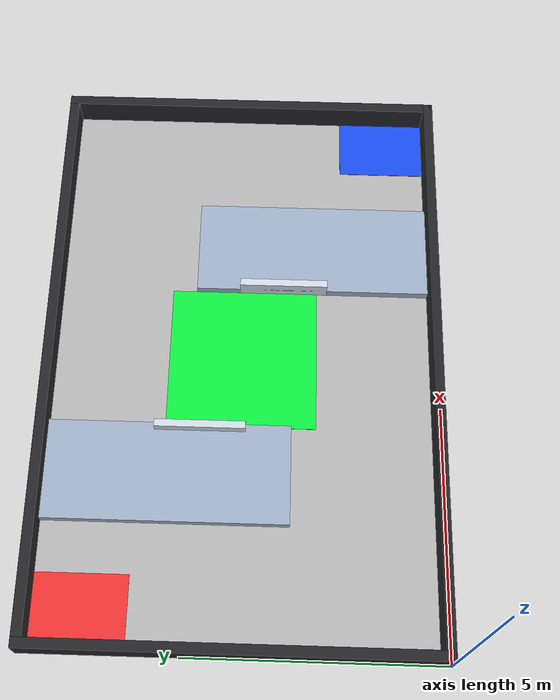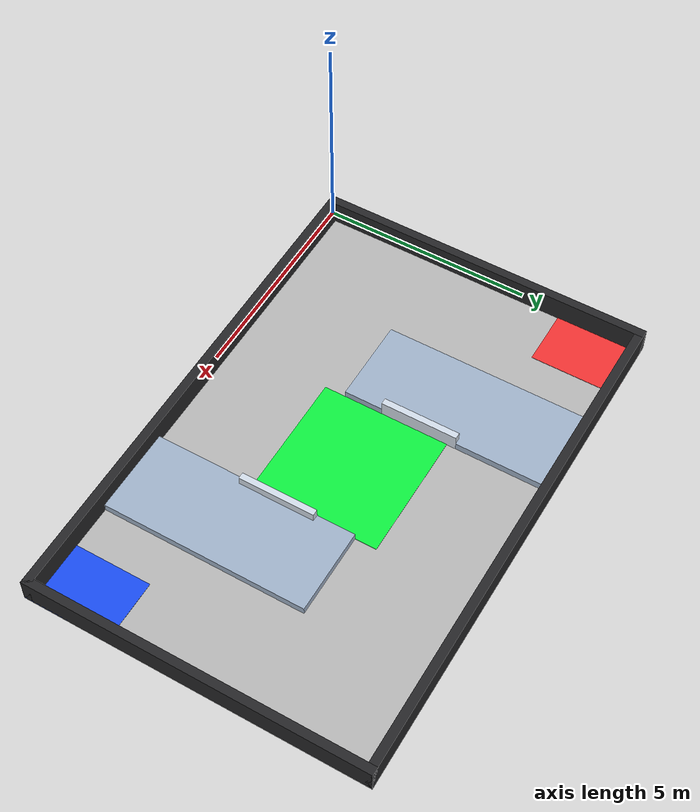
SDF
<?xml version='1.0' encoding='utf-8'?>
<sdf version="1.7">
  <world name="default">
    <gravity>0 0 -9.81</gravity>
    <physics name="default_physics" default="0" type="ode">
      <max_step_size>0.001</max_step_size>
      <real_time_factor>1</real_time_factor>
      <real_time_update_rate>1000</real_time_update_rate>
      </physics>
    <scene>
      <ambient>0.4 0.4 0.4 1</ambient>
      <background>0.7 0.7 0.7 1</background>
      <shadows>1</shadows>
      </scene>
    <model name="floor">
      <static>1</static>
      <pose>6.0000 4.0000 0.0100 0 0 0</pose>
      <link name="link">
        <collision name="collision">
          <geometry>
            <box>
              <size>12.0000 8.0000 0.0200</size>
              </box>
            </geometry>
          </collision>
        <visual name="visual">
          <geometry>
            <box>
              <size>12.0000 8.0000 0.0200</size>
              </box>
            </geometry>
          <material>
            <ambient>0.720 0.720 0.720 1.000</ambient>
            <diffuse>0.720 0.720 0.720 1.000</diffuse>
            </material>
          </visual>
        </link>
      </model>
    <model name="wall_left">
      <static>1</static>
      <pose>0.1000 4.0000 0.3000 0 0 0</pose>
      <link name="link">
        <collision name="collision">
          <geometry>
            <box>
              <size>0.2000 8.0000 0.6000</size>
              </box>
            </geometry>
          </collision>
        <visual name="visual">
          <geometry>
            <box>
              <size>0.2000 8.0000 0.6000</size>
              </box>
            </geometry>
          <material>
            <ambient>0.150 0.150 0.160 1.000</ambient>
            <diffuse>0.150 0.150 0.160 1.000</diffuse>
            </material>
          </visual>
        </link>
      </model>
    <model name="wall_right">
      <static>1</static>
      <pose>11.9000 4.0000 0.3000 0 0 0</pose>
      <link name="link">
        <collision name="collision">
          <geometry>
            <box>
              <size>0.2000 8.0000 0.6000</size>
              </box>
            </geometry>
          </collision>
        <visual name="visual">
          <geometry>
            <box>
              <size>0.2000 8.0000 0.6000</size>
              </box>
            </geometry>
          <material>
            <ambient>0.150 0.150 0.160 1.000</ambient>
            <diffuse>0.150 0.150 0.160 1.000</diffuse>
            </material>
          </visual>
        </link>
      </model>
    <model name="wall_bottom">
      <static>1</static>
      <pose>6.0000 0.1000 0.3000 0 0 0</pose>
      <link name="link">
        <collision name="collision">
          <geometry>
            <box>
              <size>12.0000 0.2000 0.6000</size>
              </box>
            </geometry>
          </collision>
        <visual name="visual">
          <geometry>
            <box>
              <size>12.0000 0.2000 0.6000</size>
              </box>
            </geometry>
          <material>
            <ambient>0.150 0.150 0.160 1.000</ambient>
            <diffuse>0.150 0.150 0.160 1.000</diffuse>
            </material>
          </visual>
        </link>
      </model>
    <model name="wall_top">
      <static>1</static>
      <pose>6.0000 7.9000 0.3000 0 0 0</pose>
      <link name="link">
        <collision name="collision">
          <geometry>
            <box>
              <size>12.0000 0.2000 0.6000</size>
              </box>
            </geometry>
          </collision>
        <visual name="visual">
          <geometry>
            <box>
              <size>12.0000 0.2000 0.6000</size>
              </box>
            </geometry>
          <material>
            <ambient>0.150 0.150 0.160 1.000</ambient>
            <diffuse>0.150 0.150 0.160 1.000</diffuse>
            </material>
          </visual>
        </link>
      </model>
    <model name="spawn_red">
      <static>1</static>
      <pose>0.7500 7.0000 0.0280 0 0 0</pose>
      <link name="link">
        <visual name="visual">
          <geometry>
            <box>
              <size>1.5000 2.0000 0.0100</size>
              </box>
            </geometry>
          <material>
            <ambient>0.950 0.200 0.200 1.000</ambient>
            <diffuse>0.950 0.200 0.200 1.000</diffuse>
            </material>
          </visual>
        </link>
      </model>
    <model name="spawn_blue">
      <static>1</static>
      <pose>11.2500 1.0000 0.0280 0 0 0</pose>
      <link name="link">
        <visual name="visual">
          <geometry>
            <box>
              <size>1.5000 2.0000 0.0100</size>
              </box>
            </geometry>
          <material>
            <ambient>0.100 0.300 0.950 1.000</ambient>
            <diffuse>0.100 0.300 0.950 1.000</diffuse>
            </material>
          </visual>
        </link>
      </model>
    <model name="control_zone">
      <static>1</static>
      <pose>6.0000 4.0000 0.0280 0 0 0</pose>
      <link name="link">
        <visual name="visual">
          <geometry>
            <box>
              <size>3.0000 3.0000 0.0100</size>
              </box>
            </geometry>
          <material>
            <ambient>0.050 0.950 0.250 1.000</ambient>
            <diffuse>0.050 0.950 0.250 1.000</diffuse>
            </material>
          </visual>
        </link>
      </model>
    <model name="highland_a">
      <static>1</static>
      <pose>3.5000 5.5000 0.1000 0 0 0</pose>
      <link name="link">
        <collision name="collision">
          <geometry>
            <box>
              <size>2.0000 5.0000 0.2000</size>
              </box>
            </geometry>
          </collision>
        <visual name="visual">
          <geometry>
            <box>
              <size>2.0000 5.0000 0.2000</size>
              </box>
            </geometry>
          <material>
            <ambient>0.630 0.700 0.790 1.000</ambient>
            <diffuse>0.630 0.700 0.790 1.000</diffuse>
            </material>
          </visual>
        </link>
      </model>
    <model name="highland_b">
      <static>1</static>
      <pose>8.5000 2.5000 0.1000 0 0 0</pose>
      <link name="link">
        <collision name="collision">
          <geometry>
            <box>
              <size>2.0000 5.0000 0.2000</size>
              </box>
            </geometry>
          </collision>
        <visual name="visual">
          <geometry>
            <box>
              <size>2.0000 5.0000 0.2000</size>
              </box>
            </geometry>
          <material>
            <ambient>0.630 0.700 0.790 1.000</ambient>
            <diffuse>0.630 0.700 0.790 1.000</diffuse>
            </material>
          </visual>
        </link>
      </model>
    <model name="highland_lip_a">
      <static>1</static>
      <pose>4.4250 4.8000 0.2000 0 0 0</pose>
      <link name="link">
        <collision name="collision">
          <geometry>
            <box>
              <size>0.1500 1.8000 0.4000</size>
              </box>
            </geometry>
          </collision>
        <visual name="visual">
          <geometry>
            <box>
              <size>0.1500 1.8000 0.4000</size>
              </box>
            </geometry>
          <material>
            <ambient>0.830 0.870 0.920 1.000</ambient>
            <diffuse>0.830 0.870 0.920 1.000</diffuse>
            </material>
          </visual>
        </link>
      </model>
    <model name="highland_lip_b">
      <static>1</static>
      <pose>7.5750 3.2000 0.2000 0 0 0</pose>
      <link name="link">
        <collision name="collision">
          <geometry>
            <box>
              <size>0.1500 1.8000 0.4000</size>
              </box>
            </geometry>
          </collision>
        <visual name="visual">
          <geometry>
            <box>
              <size>0.1500 1.8000 0.4000</size>
              </box>
            </geometry>
          <material>
            <ambient>0.830 0.870 0.920 1.000</ambient>
            <diffuse>0.830 0.870 0.920 1.000</diffuse>
            </material>
          </visual>
        </link>
      </model>
    <light name="sun" type="directional">
      <cast_shadows>1</cast_shadows>
      <pose>6 4 10 0 0 0</pose>
      <diffuse>0.8 0.8 0.8 1</diffuse>
      <specular>0.2 0.2 0.2 1</specular>
      <direction>0.2 0.2 -1</direction>
      </light>
    </world>
  </sdf>
